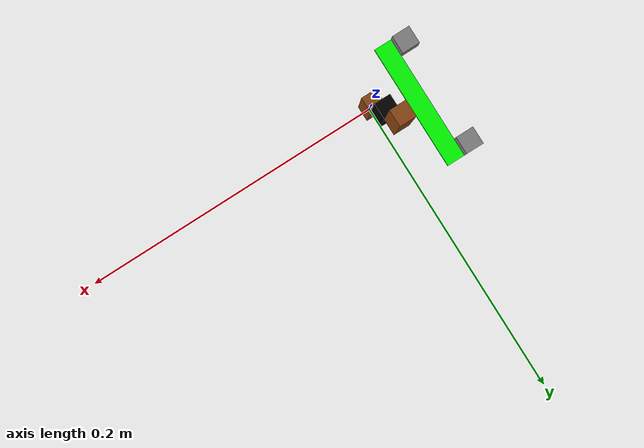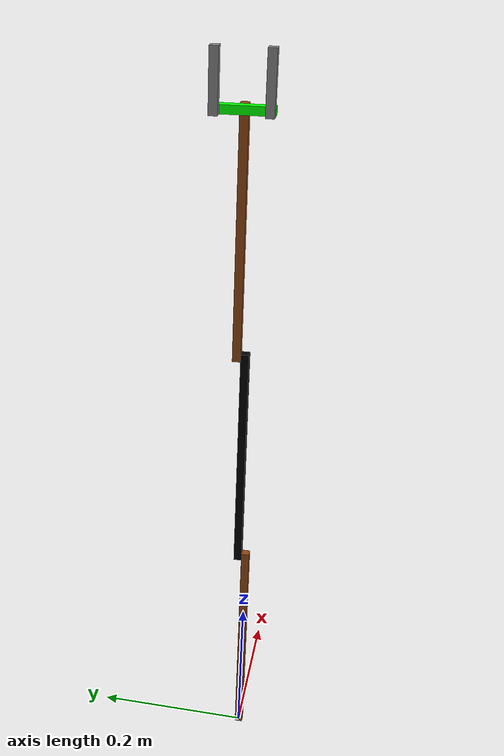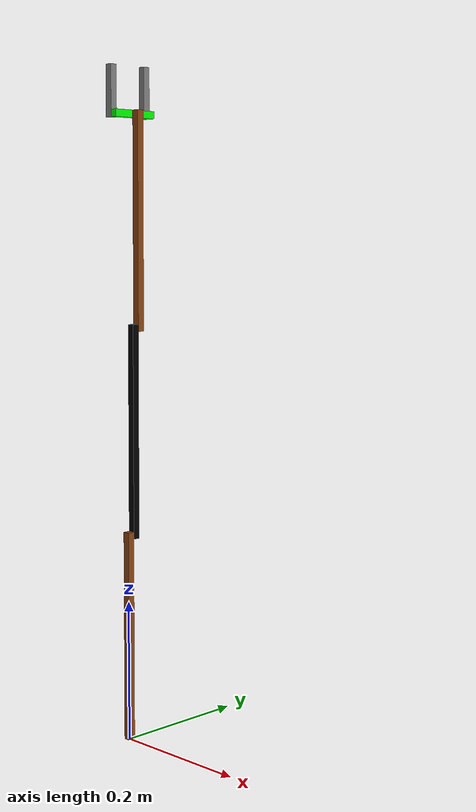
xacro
<?xml version="1.0"?>
<robot name="tooro" xmlns:xacro="http://www.ros.org/wiki/xacro">

  <xacro:property name="link_width" value="0.01" />
  <xacro:property name="link_height" value="0.3" />
  <xacro:property name="arm_width" value="0.07" />
  <xacro:property name="finger_length" value="0.07" />
  <xacro:property name="camera_link" value="0.005" />
  <xacro:property name="axel_offset" value="0.005" />

  <xacro:include filename="$(find tooro_description)/urdf/common.xacro" />
  <xacro:include filename="$(find tooro_description)/urdf/materials.xacro" />

  <link name="world"/>

  <joint name="fixed" type="fixed">
    <parent link="world"/>
    <child link="base_link"/>
  </joint>

  <link name="base_link">
    <visual>
      <origin xyz="0 0 ${link_height/2}" rpy="0 0 0"/>
      <xacro:box_geometry width="${link_width}" depth="${link_width}" height="${link_height}" />
      <xacro:brown_material />
    </visual>

    <xacro:box_collision z_origin="${link_height/2}" width="${link_width}" depth="${link_width}" height="${link_height}" />
    <xacro:box_inertia z_origin="${link_height/2}" mass="0.1" width="${link_width}" depth="${link_width}" height="${link_height}" />
  </link>

  <joint name="joint1" type="continuous">
    <parent link="base_link"/>
    <child link="link2"/>
    <origin xyz="0 ${link_width} ${link_height - axel_offset}" rpy="0 0 0"/>
    <axis xyz="0 1 0"/>
    <dynamics damping="0.7"/>
  </joint>

  <link name="link2">
    <visual>
      <origin xyz="0 0 ${link_height/2 - axel_offset}" rpy="0 0 0"/>
      <xacro:box_geometry width="${link_width}" depth="${link_width}" height="${link_height}" />
      <xacro:black_material />
    </visual>

    <xacro:box_collision z_origin="${link_height/2 - axel_offset}" width="${link_width}" depth="${link_width}" height="${link_height}" />
    <xacro:box_inertia z_origin="${link_height/2- axel_offset}" mass="0.1" width="${link_width}" depth="${link_width}" height="${link_height}" />
  </link>

  <joint name="joint2" type="continuous">
    <parent link="link2"/>
    <child link="link3"/>
    <origin xyz="0 ${link_width} ${link_height - axel_offset*2}" rpy="0 0 0"/>
    <axis xyz="0 1 0"/>
    <dynamics damping="0.7"/>
  </joint>

  <link name="link3">
    <visual>
      <origin xyz="0 0 ${link_height/2 - axel_offset}" rpy="0 0 0"/>
      <xacro:box_geometry width="${link_width}" depth="${link_width}" height="${link_height}" />
      <xacro:brown_material />
    </visual>

    <xacro:box_collision z_origin="${link_height/2 - axel_offset}" width="${link_width}" depth="${link_width}" height="${link_height}" />
    <xacro:box_inertia z_origin="${link_height/2- axel_offset}" mass="0.1" width="${link_width}" depth="${link_width}" height="${link_height}" />
  </link>

  <joint name="arm_joint" type="fixed">
    <axis xyz="1 0 0" />
    <origin xyz="${-link_width} 0 ${link_height - axel_offset*2}" rpy="0 0 0"/>
    <parent link="link3"/>
    <child link="arm_link"/>
  </joint>

  <link name="arm_link">
    <visual>
      <origin xyz="0 0 0" rpy="0 0 0"/>
      <xacro:box_geometry width="${link_width}" depth="${arm_width}" height="${link_width}" />
      <xacro:green_material />
    </visual>

    <xacro:box_collision z_origin="0" width="${arm_width}" depth="${link_width}" height="${link_width}" />
    <xacro:box_inertia z_origin="0" mass="0.01" width="${arm_width}" depth="${link_width}" height="${link_width}" />
  </link>

  <joint name="left_finger_joint" type="continuous">
    <parent link="arm_link"/>
    <child link="left_finger_link"/>
    <origin xyz="${-link_width} ${arm_width/2 - link_width/2} ${-link_width/2}" rpy="0 0 0"/>
    <axis xyz="1 0 0"/>
    <dynamics damping="0.7"/>
  </joint>

  <link name="left_finger_link">
    <visual>
      <origin xyz="0 0 ${finger_length/2}" rpy="0 0 0"/>
      <xacro:box_geometry width="${link_width}" depth="${link_width}" height="${finger_length}" />
      <xacro:grey_material />
    </visual>

    <xacro:box_collision z_origin="${finger_length/2}" width="${link_width}" depth="${link_width}" height="${finger_length}" />
    <xacro:box_inertia z_origin="${finger_length/2}" mass="0.01" width="${link_width}" depth="${link_width}" height="${finger_length}" />
  </link>

  <joint name="right_finger_joint" type="continuous">
    <parent link="arm_link"/>
    <child link="right_finger_link"/>
    <origin xyz="${-link_width} ${-arm_width/2 + link_width/2} ${-link_width/2}" rpy="0 0 0"/>
    <axis xyz="1 0 0"/>
    <dynamics damping="0.7"/>
  </joint>

  <link name="right_finger_link">
    <visual>
      <origin xyz="0 0 ${finger_length/2}" rpy="0 0 0"/>
      <xacro:box_geometry width="${link_width}" depth="${link_width}" height="${finger_length}" />
      <xacro:grey_material />
    </visual>

    <xacro:box_collision z_origin="${finger_length/2}" width="${link_width}" depth="${link_width}" height="${finger_length}" />
    <xacro:box_inertia z_origin="${finger_length/2}" mass="0.01" width="${link_width}" depth="${link_width}" height="${finger_length}" />
  </link>

</robot>

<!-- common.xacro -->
<robot xmlns:xacro="http://www.ros.org/wiki/xacro">

  <xacro:macro name="box_inertia" params="z_origin mass width depth height">

      <inertial>
         <mass value="${mass}" />
         <origin xyz="0 0 ${z_origin}" />

         <inertia  ixx="${(height*height + depth*depth)*mass/12}" ixy="0.0" ixz="0.0"
                   iyy="${(height*height + width*width)*mass/12}" iyz="0.0"
                   izz="${(width*width + depth*depth)*mass/12}" />
      </inertial>

  </xacro:macro>

  <xacro:macro name="box_geometry" params="width depth height">
    <geometry>
      <box size="${width} ${depth} ${height}"/>
    </geometry>
  </xacro:macro>

  <xacro:macro name="box_collision" params="z_origin width depth height">
    <collision>
      <origin xyz="0 0 ${z_origin}" rpy="0 0 0"/>
      <xacro:box_geometry width="${width}" depth="${depth}" height="${height}" />
    </collision>
  </xacro:macro>

</robot>

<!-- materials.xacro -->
<robot xmlns:xacro="http://www.ros.org/wiki/xacro">

   <xacro:macro name="white_material">
      <material name="white">
        <color rgba="255 255 255 1"/>
      </material>
   </xacro:macro>

   <xacro:macro name="black_material">
      <material name="black">
        <color rgba="0 0 0 1"/>
      </material>
   </xacro:macro>

   <xacro:macro name="red_material">
      <material name="red">
        <color rgba="255 0 0 1"/>
      </material>
   </xacro:macro>

   <xacro:macro name="green_material">
      <material name="green">
        <color rgba="0 255 0 1"/>
      </material>
   </xacro:macro>

   <xacro:macro name="brown_material">
      <material name="brown">
        <color rgba="139 69 19 1"/>
      </material>
   </xacro:macro>

   <xacro:macro name="grey_material">
      <material name="grey">
        <color rgba="128 128 128 1"/>
      </material>
   </xacro:macro>

</robot>
